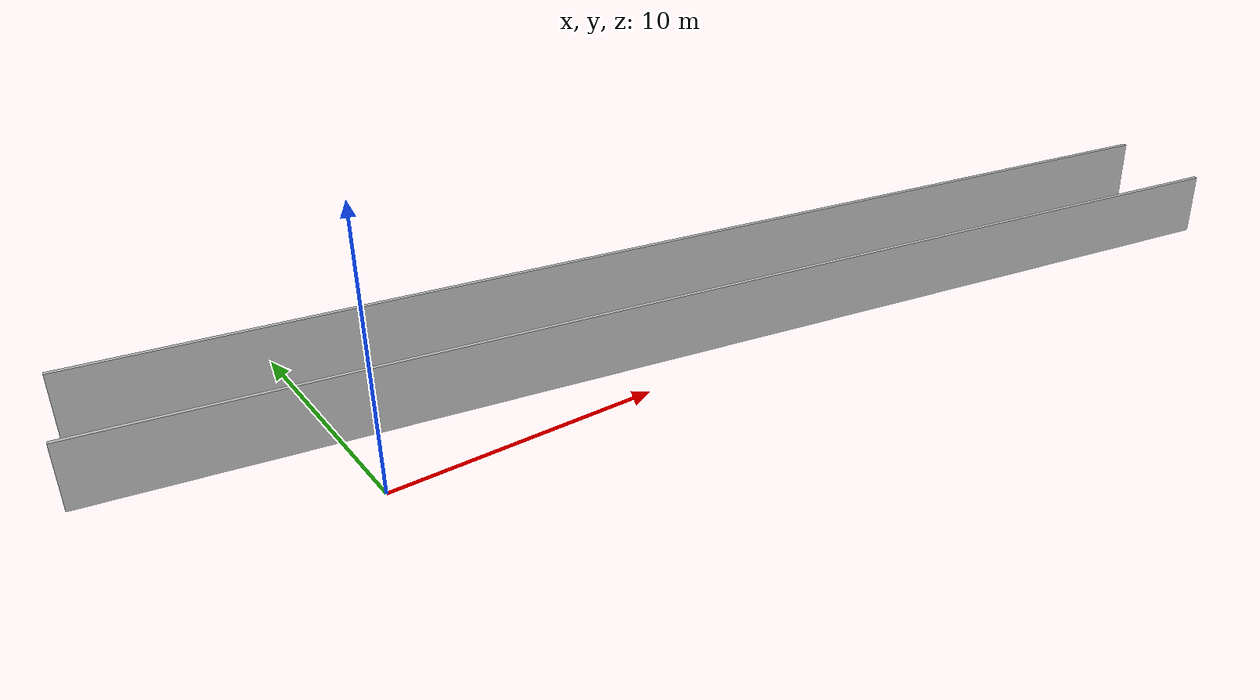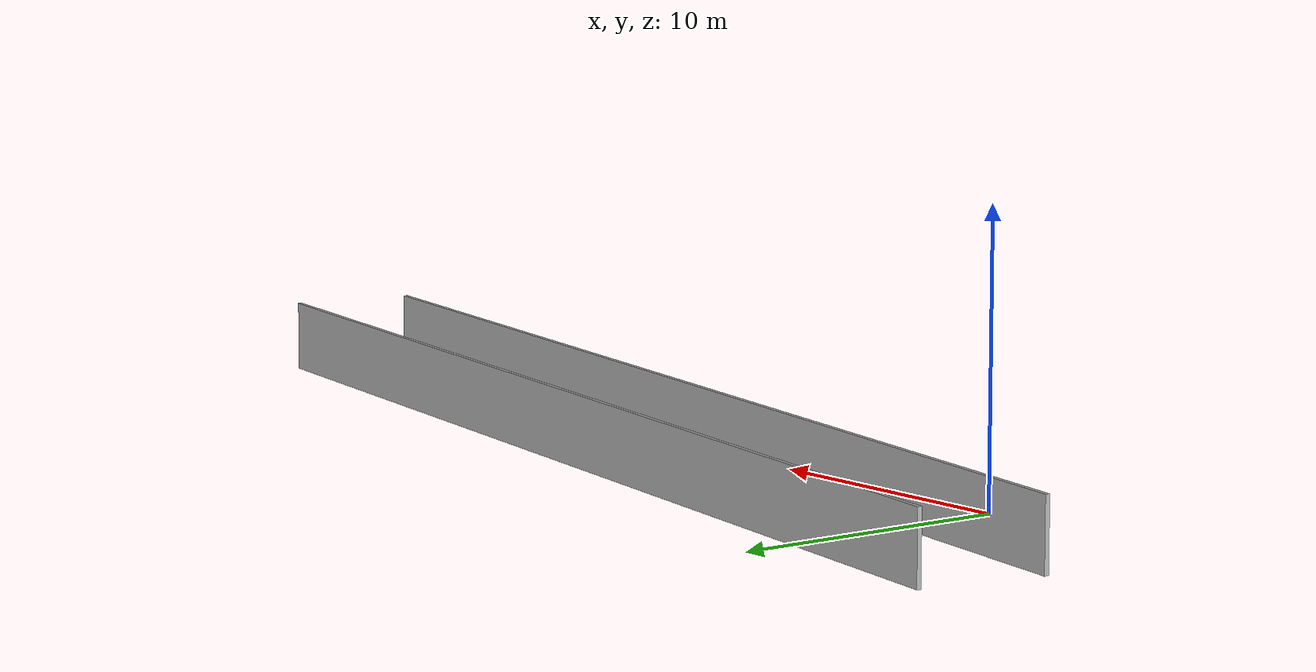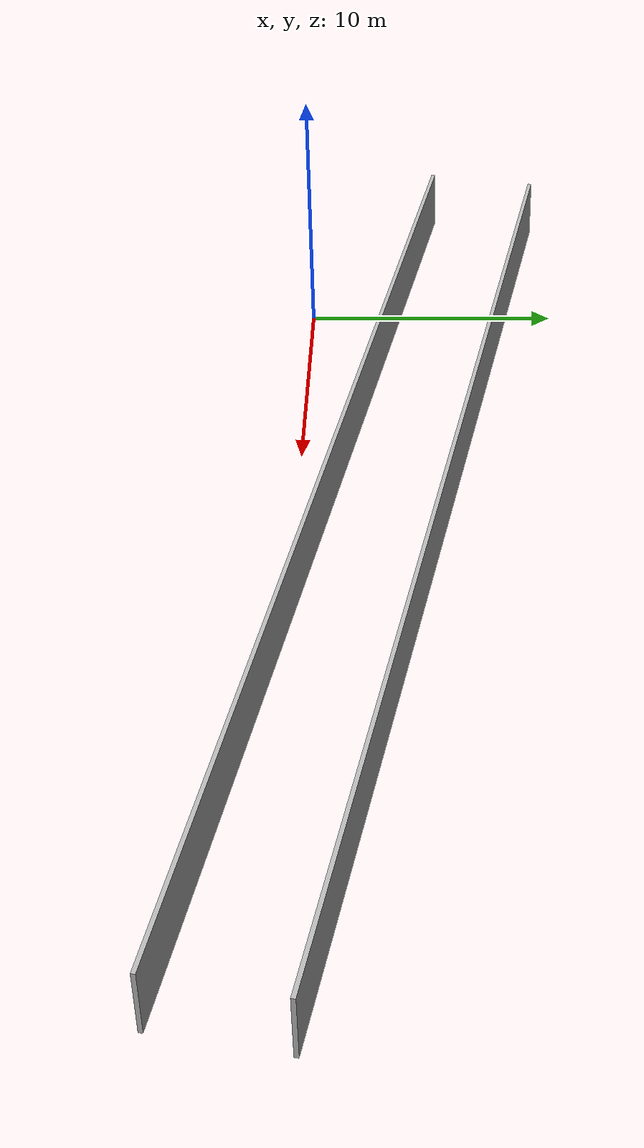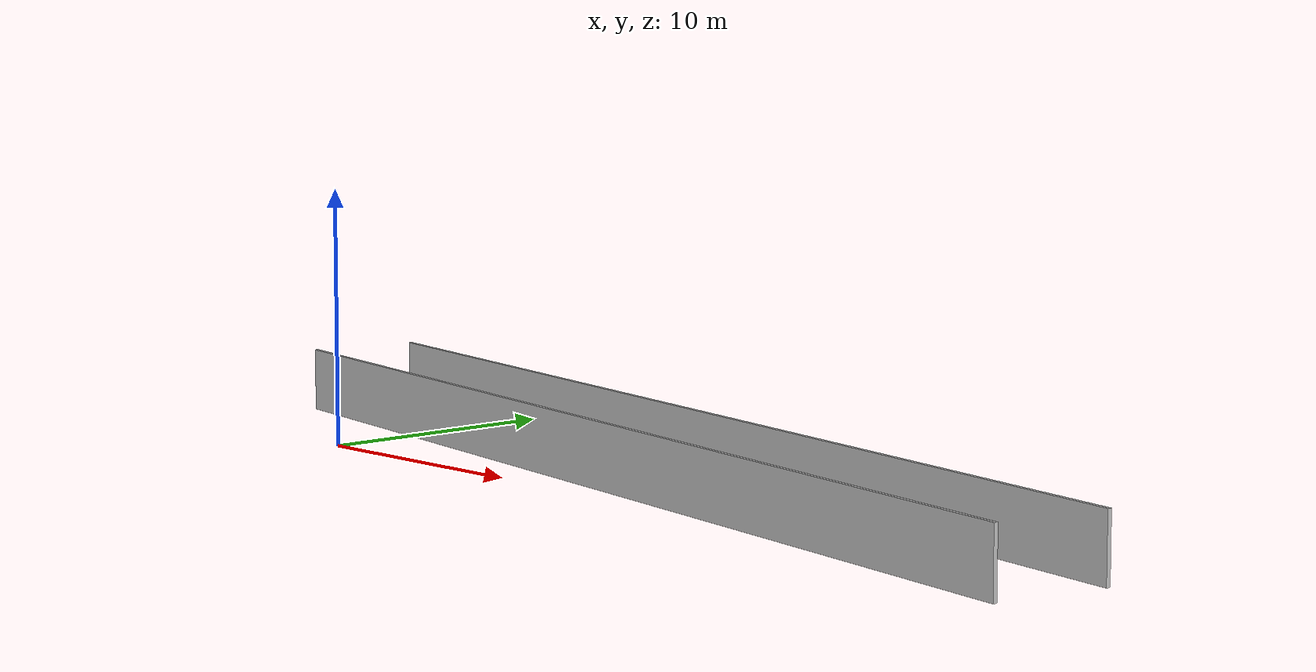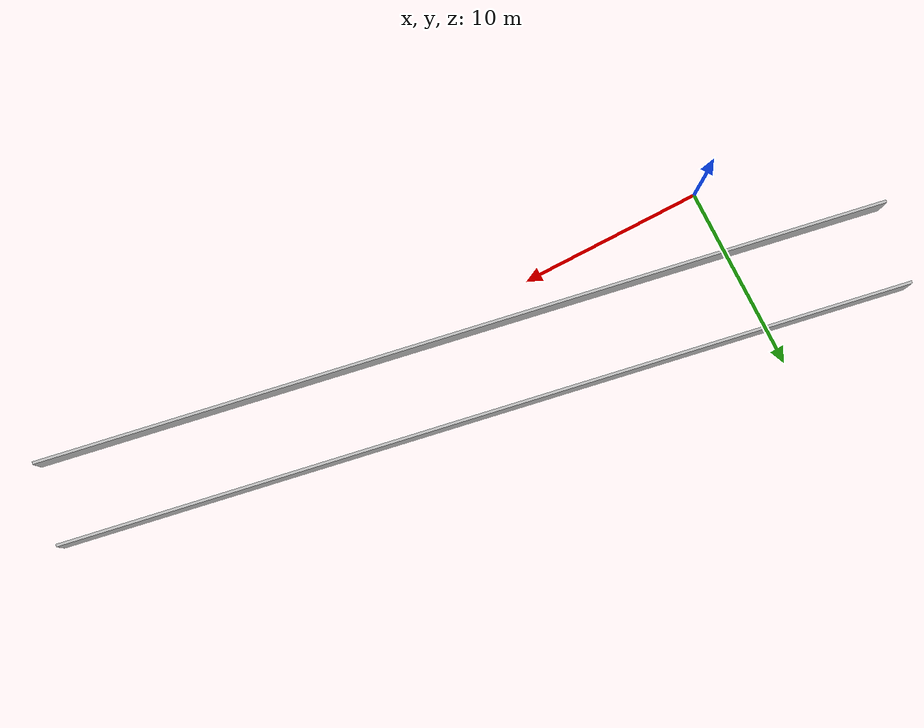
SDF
<?xml version="1.0" ?>
<sdf version="1.6">
  <model name="sps_3103">
    <pose frame="">0 0 0 0 -0 0</pose>
    <static>1</static>
    <self_collide>0</self_collide>
    <allow_auto_disable>0</allow_auto_disable>
    <link name="Wall3579">
      <kinematic>0</kinematic>
      <gravity>1</gravity>
      <self_collide>0</self_collide>
      <collision name="collision">
        <geometry>
          <box>
            <size>45.9354 0.15 2.5</size>
          </box>
        </geometry>
        <pose frame="">0 0 0 0 -0 0</pose>
      </collision>
      <visual name="visual">
        <geometry>
          <box>
            <size>45.9354 0.15 2.5</size>
          </box>
        </geometry>
        <pose frame="">0 0 0 0 -0 0</pose>
        <cast_shadows>1</cast_shadows>
        <transparency>0.0</transparency>
      </visual>
      <pose frame="">14.3456 1.02159 1.25 0 -0 2.96219</pose>
    </link>
    <link name="Wall7354">
      <kinematic>0</kinematic>
      <gravity>1</gravity>
      <self_collide>0</self_collide>
      <collision name="collision">
        <geometry>
          <box>
            <size>45.8892 0.15 2.5</size>
          </box>
        </geometry>
        <pose frame="">0 0 0 0 -0 0</pose>
      </collision>
      <visual name="visual">
        <geometry>
          <box>
            <size>45.8892 0.15 2.5</size>
          </box>
        </geometry>
        <pose frame="">0 0 0 0 -0 0</pose>
        <cast_shadows>1</cast_shadows>
        <transparency>0.0</transparency>
      </visual>
      <pose frame="">15.1674 5.3437 1.25 0 -0 2.9622</pose>
    </link>
  </model>
</sdf>
